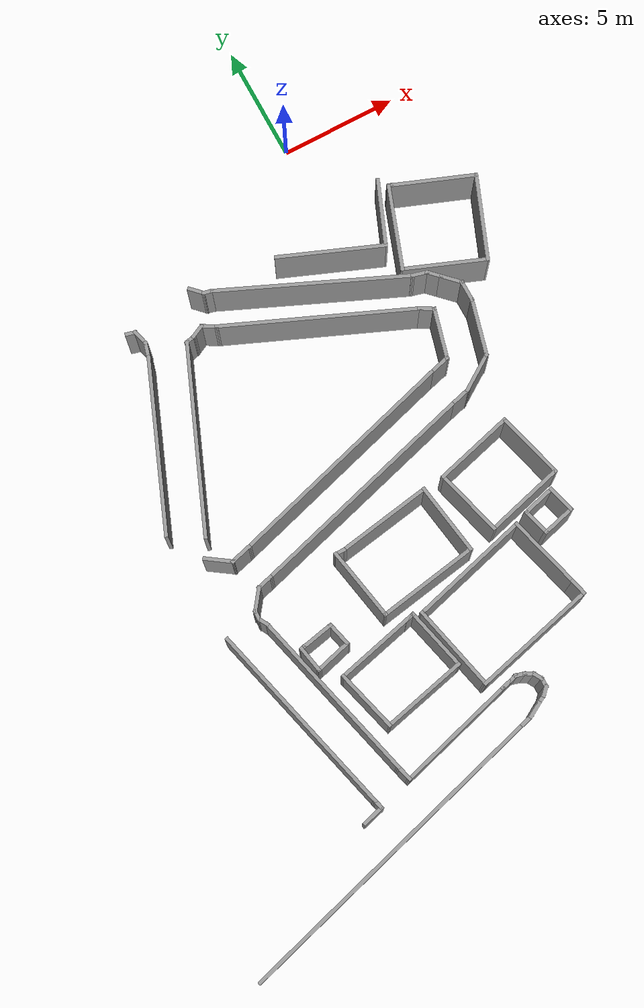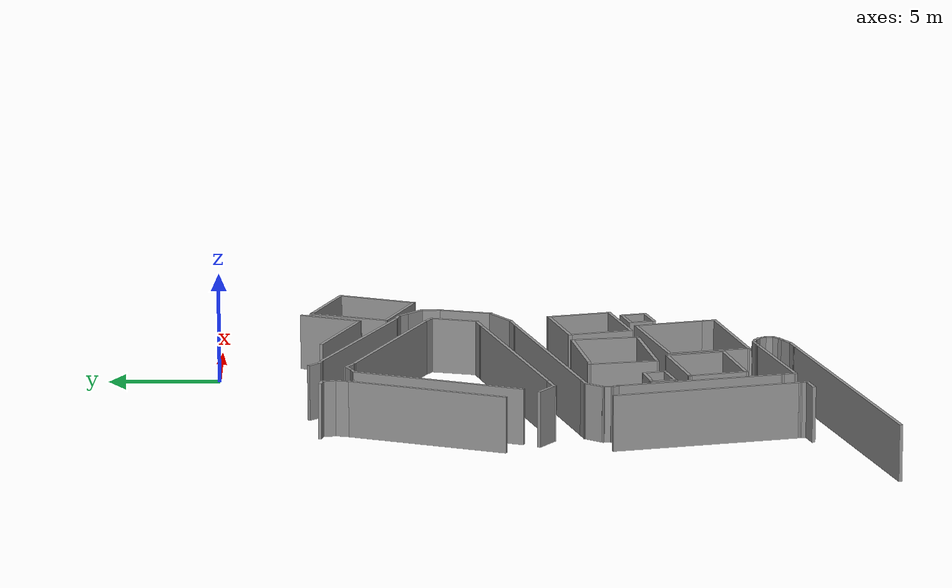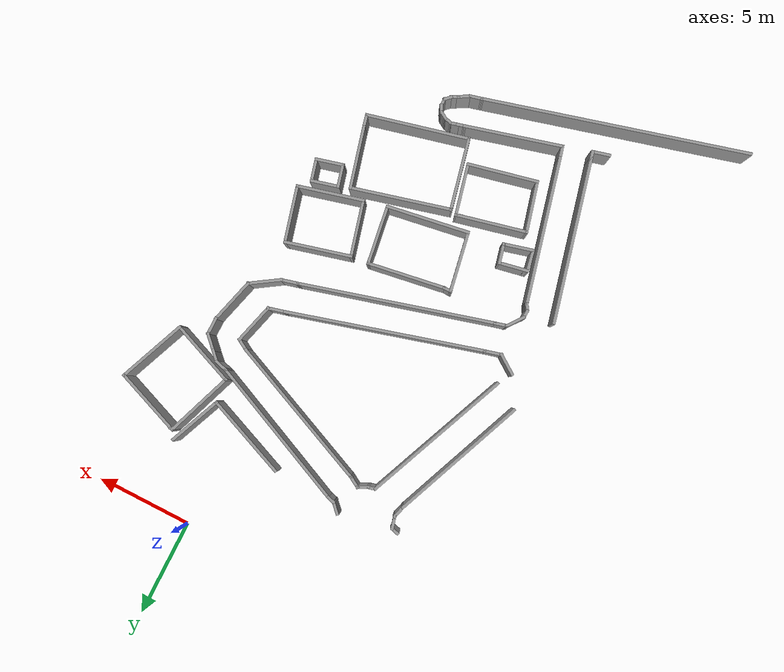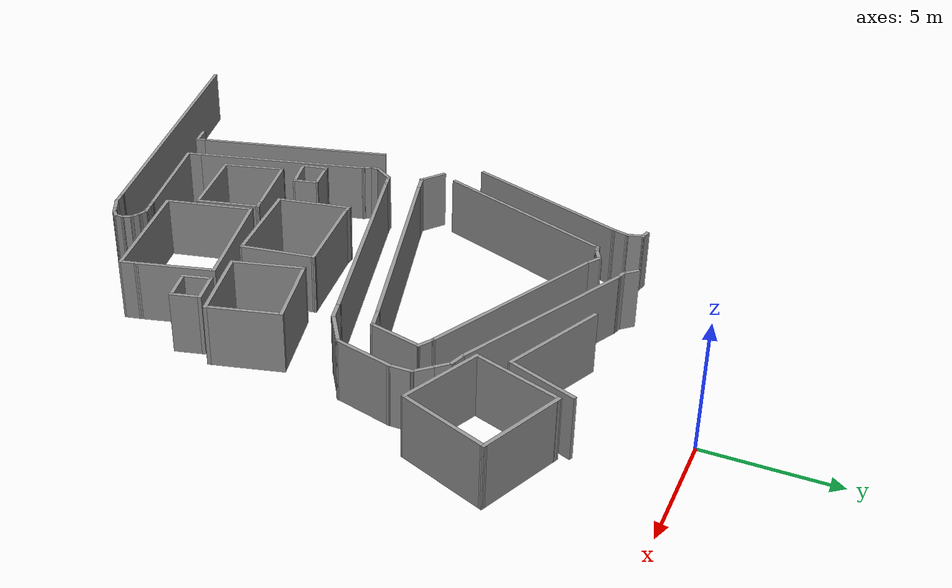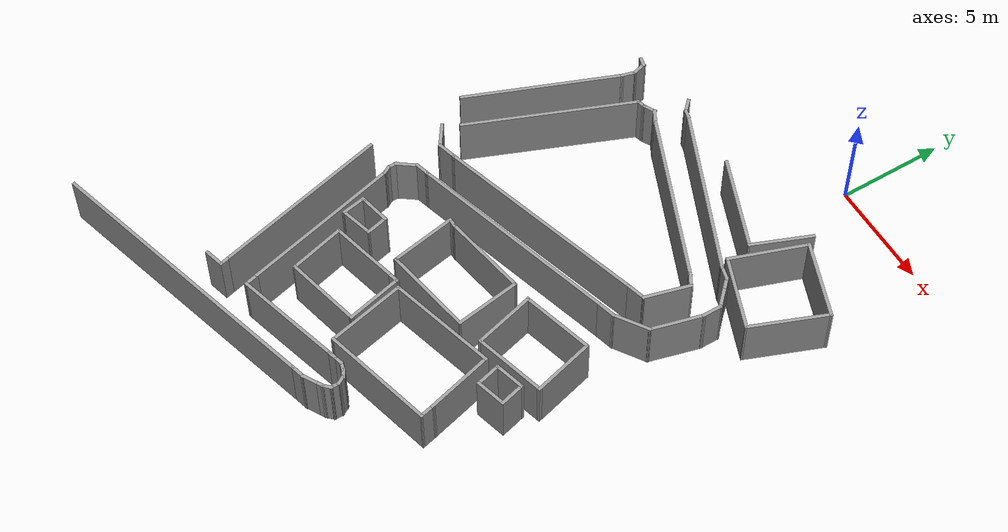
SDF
<sdf version="1.6">
 <model name="palazzo">
  <pose>-1.20783 -1.18535 0 0 -0 0</pose>
  <link name="Wall_1089">
   <collision name="Wall_1089_Collision">
    <geometry><box><size>0.5 0.15 2.5</size></box></geometry>
    <pose>0 0 1.25 0 -0 0</pose>
   </collision>
   <visual name="Wall_1089_Visual">
    <pose>0 0 1.25 0 -0 0</pose>
    <geometry><box><size>0.5 0.15 2.5</size></box></geometry>
    <material>
     <script><uri>file://media/materials/scripts/gazebo.material</uri><name>Gazebo/Grey</name></script>
     <ambient>1 1 1 1</ambient>
    </material>
    <meta><layer>0</layer></meta>
   </visual>
   <pose>-5.1104 -15.2881 0 0 -0 0</pose>
  </link>
  <link name="Wall_1091">
   <collision name="Wall_1091_Collision">
    <geometry><box><size>4.1105 0.15 2.5</size></box></geometry>
    <pose>0 0 1.25 0 -0 0</pose>
   </collision>
   <visual name="Wall_1091_Visual">
    <pose>0 0 1.25 0 -0 0</pose>
    <geometry><box><size>4.1105 0.15 2.5</size></box></geometry>
    <material>
     <script><uri>file://media/materials/scripts/gazebo.material</uri><name>Gazebo/Grey</name></script>
     <ambient>1 1 1 1</ambient>
    </material>
    <meta><layer>0</layer></meta>
   </visual>
   <pose>-2.98148 -14.9663 0 0 -0 -2.97833</pose>
  </link>
  <link name="Wall_1094">
   <collision name="Wall_1094_Collision">
    <geometry><box><size>3.19531 0.15 2.5</size></box></geometry>
    <pose>0 0 1.25 0 -0 0</pose>
   </collision>
   <visual name="Wall_1094_Visual">
    <pose>0 0 1.25 0 -0 0</pose>
    <geometry><box><size>3.19531 0.15 2.5</size></box></geometry>
    <material>
     <script><uri>file://media/materials/scripts/gazebo.material</uri><name>Gazebo/Grey</name></script>
     <ambient>1 1 1 1</ambient>
    </material>
    <meta><layer>0</layer></meta>
   </visual>
   <pose>-5.0062 -16.785 0 0 -0 1.75521</pose>
  </link>
  <link name="Wall_1096">
   <collision name="Wall_1096_Collision">
    <geometry><box><size>3.13127 0.15 2.5</size></box></geometry>
    <pose>0 0 1.25 0 -0 0</pose>
   </collision>
   <visual name="Wall_1096_Visual">
    <pose>0 0 1.25 0 -0 0</pose>
    <geometry><box><size>3.13127 0.15 2.5</size></box></geometry>
    <material>
     <script><uri>file://media/materials/scripts/gazebo.material</uri><name>Gazebo/Grey</name></script>
     <ambient>1 1 1 1</ambient>
    </material>
    <meta><layer>0</layer></meta>
   </visual>
   <pose>-0.802644 -16.118 0 0 -0 1.72226</pose>
  </link>
  <link name="Wall_1100">
   <collision name="Wall_1100_Collision">
    <geometry><box><size>4.35628 0.15 2.5</size></box></geometry>
    <pose>0 0 1.25 0 -0 0</pose>
   </collision>
   <visual name="Wall_1100_Visual">
    <pose>0 0 1.25 0 -0 0</pose>
    <geometry><box><size>4.35628 0.15 2.5</size></box></geometry>
    <material>
     <script><uri>file://media/materials/scripts/gazebo.material</uri><name>Gazebo/Grey</name></script>
     <ambient>1 1 1 1</ambient>
    </material>
    <meta><layer>0</layer></meta>
   </visual>
   <pose>-2.65236 -17.9367 0 0 -0 0.164846</pose>
  </link>
  <link name="Wall_1102">
   <collision name="Wall_1102_Collision">
    <geometry><box><size>0.25 0.15 2.5</size></box></geometry>
    <pose>0 0 1.25 0 -0 0</pose>
   </collision>
   <visual name="Wall_1102_Visual">
    <pose>0 0 1.25 0 -0 0</pose>
    <geometry><box><size>0.25 0.15 2.5</size></box></geometry>
    <material>
     <script><uri>file://media/materials/scripts/gazebo.material</uri><name>Gazebo/Grey</name></script>
     <ambient>1 1 1 1</ambient>
    </material>
    <meta><layer>0</layer></meta>
   </visual>
   <pose>-8.15322 -17.9121 0 0 -0 0.261799</pose>
  </link>
  <link name="Wall_1104">
   <collision name="Wall_1104_Collision">
    <geometry><box><size>1.5904 0.15 2.5</size></box></geometry>
    <pose>0 0 1.25 0 -0 0</pose>
   </collision>
   <visual name="Wall_1104_Visual">
    <pose>0 0 1.25 0 -0 0</pose>
    <geometry><box><size>1.5904 0.15 2.5</size></box></geometry>
    <material>
     <script><uri>file://media/materials/scripts/gazebo.material</uri><name>Gazebo/Grey</name></script>
     <ambient>1 1 1 1</ambient>
    </material>
    <meta><layer>0</layer></meta>
   </visual>
   <pose>-7.49575 -17.7816 0 0 -0 -2.94103</pose>
  </link>
  <link name="Wall_1106">
   <collision name="Wall_1106_Collision">
    <geometry><box><size>1.20102 0.15 2.5</size></box></geometry>
    <pose>0 0 1.25 0 -0 0</pose>
   </collision>
   <visual name="Wall_1106_Visual">
    <pose>0 0 1.25 0 -0 0</pose>
    <geometry><box><size>1.20102 0.15 2.5</size></box></geometry>
    <material>
     <script><uri>file://media/materials/scripts/gazebo.material</uri><name>Gazebo/Grey</name></script>
     <ambient>1 1 1 1</ambient>
    </material>
    <meta><layer>0</layer></meta>
   </visual>
   <pose>-8.10069 -18.4408 0 0 -0 1.76385</pose>
  </link>
  <link name="Wall_1108">
   <collision name="Wall_1108_Collision">
    <geometry><box><size>1.10932 0.15 2.5</size></box></geometry>
    <pose>0 0 1.25 0 -0 0</pose>
   </collision>
   <visual name="Wall_1108_Visual">
    <pose>0 0 1.25 0 -0 0</pose>
    <geometry><box><size>1.10932 0.15 2.5</size></box></geometry>
    <material>
     <script><uri>file://media/materials/scripts/gazebo.material</uri><name>Gazebo/Grey</name></script>
     <ambient>1 1 1 1</ambient>
    </material>
    <meta><layer>0</layer></meta>
   </visual>
   <pose>-6.67366 -18.1034 0 0 -0 1.81577</pose>
  </link>
  <link name="Wall_1110">
   <collision name="Wall_1110_Collision">
    <geometry><box><size>1.64376 0.15 2.5</size></box></geometry>
    <pose>0 0 1.25 0 -0 0</pose>
   </collision>
   <visual name="Wall_1110_Visual">
    <pose>0 0 1.25 0 -0 0</pose>
    <geometry><box><size>1.64376 0.15 2.5</size></box></geometry>
    <material>
     <script><uri>file://media/materials/scripts/gazebo.material</uri><name>Gazebo/Grey</name></script>
     <ambient>1 1 1 1</ambient>
    </material>
    <meta><layer>0</layer></meta>
   </visual>
   <pose>-7.2786 -18.7626 0 0 -0 0.262609</pose>
  </link>
  <link name="Wall_1112">
   <collision name="Wall_1112_Collision">
    <geometry><box><size>3.5 0.15 2.5</size></box></geometry>
    <pose>0 0 1.25 0 -0 0</pose>
   </collision>
   <visual name="Wall_1112_Visual">
    <pose>0 0 1.25 0 -0 0</pose>
    <geometry><box><size>3.5 0.15 2.5</size></box></geometry>
    <material>
     <script><uri>file://media/materials/scripts/gazebo.material</uri><name>Gazebo/Grey</name></script>
     <ambient>1 1 1 1</ambient>
    </material>
    <meta><layer>0</layer></meta>
   </visual>
   <pose>1.50593 -14.1293 0 0 -0 0.261799</pose>
  </link>
  <link name="Wall_1113">
   <collision name="Wall_1113_Collision">
    <geometry><box><size>3 0.15 2.5</size></box></geometry>
    <pose>0 0 1.25 0 -0 0</pose>
   </collision>
   <visual name="Wall_1113_Visual">
    <pose>0 0 1.25 0 -0 0</pose>
    <geometry><box><size>3 0.15 2.5</size></box></geometry>
    <material>
     <script><uri>file://media/materials/scripts/gazebo.material</uri><name>Gazebo/Grey</name></script>
     <ambient>1 1 1 1</ambient>
    </material>
    <meta><layer>0</layer></meta>
   </visual>
   <pose>3.49268 -15.0722 0 0 -0 -1.309</pose>
  </link>
  <link name="Wall_1114">
   <collision name="Wall_1114_Collision">
    <geometry><box><size>3.5 0.15 2.5</size></box></geometry>
    <pose>0 0 1.25 0 -0 0</pose>
   </collision>
   <visual name="Wall_1114_Visual">
    <pose>0 0 1.25 0 -0 0</pose>
    <geometry><box><size>3.5 0.15 2.5</size></box></geometry>
    <material>
     <script><uri>file://media/materials/scripts/gazebo.material</uri><name>Gazebo/Grey</name></script>
     <ambient>1 1 1 1</ambient>
    </material>
    <meta><layer>0</layer></meta>
   </visual>
   <pose>2.24357 -16.8821 0 0 -0 -2.87979</pose>
  </link>
  <link name="Wall_1115">
   <collision name="Wall_1115_Collision">
    <geometry><box><size>3 0.15 2.5</size></box></geometry>
    <pose>0 0 1.25 0 -0 0</pose>
   </collision>
   <visual name="Wall_1115_Visual">
    <pose>0 0 1.25 0 -0 0</pose>
    <geometry><box><size>3 0.15 2.5</size></box></geometry>
    <material>
     <script><uri>file://media/materials/scripts/gazebo.material</uri><name>Gazebo/Grey</name></script>
     <ambient>1 1 1 1</ambient>
    </material>
    <meta><layer>0</layer></meta>
   </visual>
   <pose>0.256826 -15.9392 0 0 -0 1.8326</pose>
  </link>
  <link name="Wall_1117">
   <collision name="Wall_1117_Collision">
    <geometry><box><size>1.5 0.15 2.5</size></box></geometry>
    <pose>0 0 1.25 0 -0 0</pose>
   </collision>
   <visual name="Wall_1117_Visual">
    <pose>0 0 1.25 0 -0 0</pose>
    <geometry><box><size>1.5 0.15 2.5</size></box></geometry>
    <material>
     <script><uri>file://media/materials/scripts/gazebo.material</uri><name>Gazebo/Grey</name></script>
     <ambient>1 1 1 1</ambient>
    </material>
    <meta><layer>0</layer></meta>
   </visual>
   <pose>2.70937 -17.1791 0 0 -0 0.261799</pose>
  </link>
  <link name="Wall_1118">
   <collision name="Wall_1118_Collision">
    <geometry><box><size>1.25 0.15 2.5</size></box></geometry>
    <pose>0 0 1.25 0 -0 0</pose>
   </collision>
   <visual name="Wall_1118_Visual">
    <pose>0 0 1.25 0 -0 0</pose>
    <geometry><box><size>1.25 0.15 2.5</size></box></geometry>
    <material>
     <script><uri>file://media/materials/scripts/gazebo.material</uri><name>Gazebo/Grey</name></script>
     <ambient>1 1 1 1</ambient>
    </material>
    <meta><layer>0</layer></meta>
   </visual>
   <pose>3.50372 -17.5357 0 0 -0 -1.309</pose>
  </link>
  <link name="Wall_1119">
   <collision name="Wall_1119_Collision">
    <geometry><box><size>1.5 0.15 2.5</size></box></geometry>
    <pose>0 0 1.25 0 -0 0</pose>
   </collision>
   <visual name="Wall_1119_Visual">
    <pose>0 0 1.25 0 -0 0</pose>
    <geometry><box><size>1.5 0.15 2.5</size></box></geometry>
    <material>
     <script><uri>file://media/materials/scripts/gazebo.material</uri><name>Gazebo/Grey</name></script>
     <ambient>1 1 1 1</ambient>
    </material>
    <meta><layer>0</layer></meta>
   </visual>
   <pose>2.99407 -18.2417 0 0 -0 -2.87979</pose>
  </link>
  <link name="Wall_1120">
   <collision name="Wall_1120_Collision">
    <geometry><box><size>1.25 0.15 2.5</size></box></geometry>
    <pose>0 0 1.25 0 -0 0</pose>
   </collision>
   <visual name="Wall_1120_Visual">
    <pose>0 0 1.25 0 -0 0</pose>
    <geometry><box><size>1.25 0.15 2.5</size></box></geometry>
    <material>
     <script><uri>file://media/materials/scripts/gazebo.material</uri><name>Gazebo/Grey</name></script>
     <ambient>1 1 1 1</ambient>
    </material>
    <meta><layer>0</layer></meta>
   </visual>
   <pose>2.19972 -17.8851 0 0 -0 1.8326</pose>
  </link>
  <link name="Wall_1122">
   <collision name="Wall_1122_Collision">
    <geometry><box><size>5.25 0.15 2.5</size></box></geometry>
    <pose>0 0 1.25 0 -0 0</pose>
   </collision>
   <visual name="Wall_1122_Visual">
    <pose>0 0 1.25 0 -0 0</pose>
    <geometry><box><size>5.25 0.15 2.5</size></box></geometry>
    <material>
     <script><uri>file://media/materials/scripts/gazebo.material</uri><name>Gazebo/Grey</name></script>
     <ambient>1 1 1 1</ambient>
    </material>
    <meta><layer>0</layer></meta>
   </visual>
   <pose>-0.978825 -18.2387 0 0 -0 0.261799</pose>
  </link>
  <link name="Wall_1123">
   <collision name="Wall_1123_Collision">
    <geometry><box><size>3.25 0.15 2.5</size></box></geometry>
    <pose>0 0 1.25 0 -0 0</pose>
   </collision>
   <visual name="Wall_1123_Visual">
    <pose>0 0 1.25 0 -0 0</pose>
    <geometry><box><size>3.25 0.15 2.5</size></box></geometry>
    <material>
     <script><uri>file://media/materials/scripts/gazebo.material</uri><name>Gazebo/Grey</name></script>
     <ambient>1 1 1 1</ambient>
    </material>
    <meta><layer>0</layer></meta>
   </visual>
   <pose>1.88546 -19.0759 0 0 -0 -1.309</pose>
  </link>
  <link name="Wall_1125">
   <collision name="Wall_1125_Collision">
    <geometry><box><size>3.79575 0.15 2.5</size></box></geometry>
    <pose>0 0 1.25 0 -0 0</pose>
   </collision>
   <visual name="Wall_1125_Visual">
    <pose>0 0 1.25 0 -0 0</pose>
    <geometry><box><size>3.79575 0.15 2.5</size></box></geometry>
    <material>
     <script><uri>file://media/materials/scripts/gazebo.material</uri><name>Gazebo/Grey</name></script>
     <ambient>1 1 1 1</ambient>
    </material>
    <meta><layer>0</layer></meta>
   </visual>
   <pose>-3.03121 -20.6747 0 0 -0 1.79806</pose>
  </link>
  <link name="Wall_1127">
   <collision name="Wall_1127_Collision">
    <geometry><box><size>5.36504 0.15 2.5</size></box></geometry>
    <pose>0 0 1.25 0 -0 0</pose>
   </collision>
   <visual name="Wall_1127_Visual">
    <pose>0 0 1.25 0 -0 0</pose>
    <geometry><box><size>5.36504 0.15 2.5</size></box></geometry>
    <material>
     <script><uri>file://media/materials/scripts/gazebo.material</uri><name>Gazebo/Grey</name></script>
     <ambient>1 1 1 1</ambient>
    </material>
    <meta><layer>0</layer></meta>
   </visual>
   <pose>-0.091497 -21.8156 0 0 -0 -2.89555</pose>
  </link>
  <link name="Wall_1129">
   <collision name="Wall_1129_Collision">
    <geometry><box><size>0.77586 0.15 2.5</size></box></geometry>
    <pose>0 0 1.25 0 -0 0</pose>
   </collision>
   <visual name="Wall_1129_Visual">
    <pose>0 0 1.25 0 -0 0</pose>
    <geometry><box><size>0.77586 0.15 2.5</size></box></geometry>
    <material>
     <script><uri>file://media/materials/scripts/gazebo.material</uri><name>Gazebo/Grey</name></script>
     <ambient>1 1 1 1</ambient>
    </material>
    <meta><layer>0</layer></meta>
   </visual>
   <pose>2.36206 -20.8768 0 0 -0 1.81425</pose>
  </link>
  <link name="Wall_1131">
   <collision name="Wall_1131_Collision">
    <geometry><box><size>0.5 0.15 2.5</size></box></geometry>
    <pose>0 0 1.25 0 -0 0</pose>
   </collision>
   <visual name="Wall_1131_Visual">
    <pose>0 0 1.25 0 -0 0</pose>
    <geometry><box><size>0.5 0.15 2.5</size></box></geometry>
    <material>
     <script><uri>file://media/materials/scripts/gazebo.material</uri><name>Gazebo/Grey</name></script>
     <ambient>1 1 1 1</ambient>
    </material>
    <meta><layer>0</layer></meta>
   </visual>
   <pose>-3.95324 -18.8223 0 0 -0 -2.87979</pose>
  </link>
  <link name="Wall_1133">
   <collision name="Wall_1133_Collision">
    <geometry><box><size>3.75657 0.15 2.5</size></box></geometry>
    <pose>0 0 1.25 0 -0 0</pose>
   </collision>
   <visual name="Wall_1133_Visual">
    <pose>0 0 1.25 0 -0 0</pose>
    <geometry><box><size>3.75657 0.15 2.5</size></box></geometry>
    <material>
     <script><uri>file://media/materials/scripts/gazebo.material</uri><name>Gazebo/Grey</name></script>
     <ambient>1 1 1 1</ambient>
    </material>
    <meta><layer>0</layer></meta>
   </visual>
   <pose>-5.53739 -19.1991 0 0 -0 0.236283</pose>
  </link>
  <link name="Wall_1135">
   <collision name="Wall_1135_Collision">
    <geometry><box><size>2.7183 0.15 2.5</size></box></geometry>
    <pose>0 0 1.25 0 -0 0</pose>
   </collision>
   <visual name="Wall_1135_Visual">
    <pose>0 0 1.25 0 -0 0</pose>
    <geometry><box><size>2.7183 0.15 2.5</size></box></geometry>
    <material>
     <script><uri>file://media/materials/scripts/gazebo.material</uri><name>Gazebo/Grey</name></script>
     <ambient>1 1 1 1</ambient>
    </material>
    <meta><layer>0</layer></meta>
   </visual>
   <pose>-6.9559 -20.861 0 0 -0 1.83445</pose>
  </link>
  <link name="Wall_1137">
   <collision name="Wall_1137_Collision">
    <geometry><box><size>2.74926 0.15 2.5</size></box></geometry>
    <pose>0 0 1.25 0 -0 0</pose>
   </collision>
   <visual name="Wall_1137_Visual">
    <pose>0 0 1.25 0 -0 0</pose>
    <geometry><box><size>2.74926 0.15 2.5</size></box></geometry>
    <material>
     <script><uri>file://media/materials/scripts/gazebo.material</uri><name>Gazebo/Grey</name></script>
     <ambient>1 1 1 1</ambient>
    </material>
    <meta><layer>0</layer></meta>
   </visual>
   <pose>-3.47616 -20.0396 0 0 -0 1.8101</pose>
  </link>
  <link name="Wall_1139">
   <collision name="Wall_1139_Collision">
    <geometry><box><size>3.69427 0.15 2.5</size></box></geometry>
    <pose>0 0 1.25 0 -0 0</pose>
   </collision>
   <visual name="Wall_1139_Visual">
    <pose>0 0 1.25 0 -0 0</pose>
    <geometry><box><size>3.69427 0.15 2.5</size></box></geometry>
    <material>
     <script><uri>file://media/materials/scripts/gazebo.material</uri><name>Gazebo/Grey</name></script>
     <ambient>1 1 1 1</ambient>
    </material>
    <meta><layer>0</layer></meta>
   </visual>
   <pose>-4.89468 -21.7015 0 0 -0 0.227281</pose>
  </link>
  <link name="Wall_221">
   <collision name="Wall_221_Collision">
    <geometry><box><size>0.75 0.15 2.5</size></box></geometry>
    <pose>0 0 1.25 0 -0 0</pose>
   </collision>
   <visual name="Wall_221_Visual">
    <pose>0 0 1.25 0 -0 0</pose>
    <geometry><box><size>0.75 0.15 2.5</size></box></geometry>
    <material>
     <script><uri>file://media/materials/scripts/gazebo.material</uri><name>Gazebo/Grey</name></script>
     <ambient>1 1 1 1</ambient>
    </material>
    <meta><layer>0</layer></meta>
   </visual>
   <pose>-5.12963 -3.20137 0 0 -0 -0.785398</pose>
  </link>
  <link name="Wall_222">
   <collision name="Wall_222_Collision">
    <geometry><box><size>0.5 0.15 2.5</size></box></geometry>
    <pose>0 0 1.25 0 -0 0</pose>
   </collision>
   <visual name="Wall_222_Visual">
    <pose>0 0 1.25 0 -0 0</pose>
    <geometry><box><size>0.5 0.15 2.5</size></box></geometry>
    <material>
     <script><uri>file://media/materials/scripts/gazebo.material</uri><name>Gazebo/Grey</name></script>
     <ambient>1 1 1 1</ambient>
    </material>
    <meta><layer>0</layer></meta>
   </visual>
   <pose>-4.74846 -3.4588 0 0 -0 -0.261799</pose>
  </link>
  <link name="Wall_224">
   <collision name="Wall_224_Collision">
    <geometry><box><size>0.75 0.15 2.5</size></box></geometry>
    <pose>0 0 1.25 0 -0 0</pose>
   </collision>
   <visual name="Wall_224_Visual">
    <pose>0 0 1.25 0 -0 0</pose>
    <geometry><box><size>0.75 0.15 2.5</size></box></geometry>
    <material>
     <script><uri>file://media/materials/scripts/gazebo.material</uri><name>Gazebo/Grey</name></script>
     <ambient>1 1 1 1</ambient>
    </material>
    <meta><layer>0</layer></meta>
   </visual>
   <pose>3.08985 -6.81653 0 0 -0 -0.261799</pose>
  </link>
  <link name="Wall_226">
   <collision name="Wall_226_Collision">
    <geometry><box><size>8.20734 0.15 2.5</size></box></geometry>
    <pose>0 0 1.25 0 -0 0</pose>
   </collision>
   <visual name="Wall_226_Visual">
    <pose>0 0 1.25 0 -0 0</pose>
    <geometry><box><size>8.20734 0.15 2.5</size></box></geometry>
    <material>
     <script><uri>file://media/materials/scripts/gazebo.material</uri><name>Gazebo/Grey</name></script>
     <ambient>1 1 1 1</ambient>
    </material>
    <meta><layer>0</layer></meta>
   </visual>
   <pose>-0.889677 -5.12149 0 0 -0 -0.413122</pose>
  </link>
  <link name="Wall_228">
   <collision name="Wall_228_Collision">
    <geometry><box><size>0.75 0.15 2.5</size></box></geometry>
    <pose>0 0 1.25 0 -0 0</pose>
   </collision>
   <visual name="Wall_228_Visual">
    <pose>0 0 1.25 0 -0 0</pose>
    <geometry><box><size>0.75 0.15 2.5</size></box></geometry>
    <material>
     <script><uri>file://media/materials/scripts/gazebo.material</uri><name>Gazebo/Grey</name></script>
     <ambient>1 1 1 1</ambient>
    </material>
    <meta><layer>0</layer></meta>
   </visual>
   <pose>3.59176 -7.1063 0 0 -0 -0.785398</pose>
  </link>
  <link name="Wall_229">
   <collision name="Wall_229_Collision">
    <geometry><box><size>1 0.15 2.5</size></box></geometry>
    <pose>0 0 1.25 0 -0 0</pose>
   </collision>
   <visual name="Wall_229_Visual">
    <pose>0 0 1.25 0 -0 0</pose>
    <geometry><box><size>1 0.15 2.5</size></box></geometry>
    <material>
     <script><uri>file://media/materials/scripts/gazebo.material</uri><name>Gazebo/Grey</name></script>
     <ambient>1 1 1 1</ambient>
    </material>
    <meta><layer>0</layer></meta>
   </visual>
   <pose>4.10441 -7.61896 0 0 -0 -0.785398</pose>
  </link>
  <link name="Wall_230">
   <collision name="Wall_230_Collision">
    <geometry><box><size>1 0.15 2.5</size></box></geometry>
    <pose>0 0 1.25 0 -0 0</pose>
   </collision>
   <visual name="Wall_230_Visual">
    <pose>0 0 1.25 0 -0 0</pose>
    <geometry><box><size>1 0.15 2.5</size></box></geometry>
    <material>
     <script><uri>file://media/materials/scripts/gazebo.material</uri><name>Gazebo/Grey</name></script>
     <ambient>1 1 1 1</ambient>
    </material>
    <meta><layer>0</layer></meta>
   </visual>
   <pose>4.40493 -8.34448 0 0 -0 -1.5708</pose>
  </link>
  <link name="Wall_231">
   <collision name="Wall_231_Collision">
    <geometry><box><size>2.5 0.15 2.5</size></box></geometry>
    <pose>0 0 1.25 0 -0 0</pose>
   </collision>
   <visual name="Wall_231_Visual">
    <pose>0 0 1.25 0 -0 0</pose>
    <geometry><box><size>2.5 0.15 2.5</size></box></geometry>
    <material>
     <script><uri>file://media/materials/scripts/gazebo.material</uri><name>Gazebo/Grey</name></script>
     <ambient>1 1 1 1</ambient>
    </material>
    <meta><layer>0</layer></meta>
   </visual>
   <pose>4.10082 -9.90444 0 0 -0 -1.8326</pose>
  </link>
  <link name="Wall_233">
   <collision name="Wall_233_Collision">
    <geometry><box><size>0.75 0.15 2.5</size></box></geometry>
    <pose>0 0 1.25 0 -0 0</pose>
   </collision>
   <visual name="Wall_233_Visual">
    <pose>0 0 1.25 0 -0 0</pose>
    <geometry><box><size>0.75 0.15 2.5</size></box></geometry>
    <material>
     <script><uri>file://media/materials/scripts/gazebo.material</uri><name>Gazebo/Grey</name></script>
     <ambient>1 1 1 1</ambient>
    </material>
    <meta><layer>0</layer></meta>
   </visual>
   <pose>-8.24523 -14.9604 0 0 -0 0.261799</pose>
  </link>
  <link name="Wall_235">
   <collision name="Wall_235_Collision">
    <geometry><box><size>1 0.15 2.5</size></box></geometry>
    <pose>0 0 1.25 0 -0 0</pose>
   </collision>
   <visual name="Wall_235_Visual">
    <pose>0 0 1.25 0 -0 0</pose>
    <geometry><box><size>1 0.15 2.5</size></box></geometry>
    <material>
     <script><uri>file://media/materials/scripts/gazebo.material</uri><name>Gazebo/Grey</name></script>
     <ambient>1 1 1 1</ambient>
    </material>
    <meta><layer>0</layer></meta>
   </visual>
   <pose>2.01407 -12.0562 0 0 -0 0.261799</pose>
  </link>
  <link name="Wall_237">
   <collision name="Wall_237_Collision">
    <geometry><box><size>1.79471 0.15 2.5</size></box></geometry>
    <pose>0 0 1.25 0 -0 0</pose>
   </collision>
   <visual name="Wall_237_Visual">
    <pose>0 0 1.25 0 -0 0</pose>
    <geometry><box><size>1.79471 0.15 2.5</size></box></geometry>
    <material>
     <script><uri>file://media/materials/scripts/gazebo.material</uri><name>Gazebo/Grey</name></script>
     <ambient>1 1 1 1</ambient>
    </material>
    <meta><layer>0</layer></meta>
   </visual>
   <pose>3.11065 -11.4928 0 0 -0 0.584005</pose>
  </link>
  <link name="Wall_239">
   <collision name="Wall_239_Collision">
    <geometry><box><size>10.0875 0.15 2.5</size></box></geometry>
    <pose>0 0 1.25 0 -0 0</pose>
   </collision>
   <visual name="Wall_239_Visual">
    <pose>0 0 1.25 0 -0 0</pose>
    <geometry><box><size>10.0875 0.15 2.5</size></box></geometry>
    <material>
     <script><uri>file://media/materials/scripts/gazebo.material</uri><name>Gazebo/Grey</name></script>
     <ambient>1 1 1 1</ambient>
    </material>
    <meta><layer>0</layer></meta>
   </visual>
   <pose>-3.17595 -13.5245 0 0 -0 0.276881</pose>
  </link>
  <link name="Wall_241">
   <collision name="Wall_241_Collision">
    <geometry><box><size>0.75 0.15 2.5</size></box></geometry>
    <pose>0 0 1.25 0 -0 0</pose>
   </collision>
   <visual name="Wall_241_Visual">
    <pose>0 0 1.25 0 -0 0</pose>
    <geometry><box><size>0.75 0.15 2.5</size></box></geometry>
    <material>
     <script><uri>file://media/materials/scripts/gazebo.material</uri><name>Gazebo/Grey</name></script>
     <ambient>1 1 1 1</ambient>
    </material>
    <meta><layer>0</layer></meta>
   </visual>
   <pose>-5.36974 -4.75157 0 0 -0 -0.523599</pose>
  </link>
  <link name="Wall_243">
   <collision name="Wall_243_Collision">
    <geometry><box><size>0.75 0.15 2.5</size></box></geometry>
    <pose>0 0 1.25 0 -0 0</pose>
   </collision>
   <visual name="Wall_243_Visual">
    <pose>0 0 1.25 0 -0 0</pose>
    <geometry><box><size>0.75 0.15 2.5</size></box></geometry>
    <material>
     <script><uri>file://media/materials/scripts/gazebo.material</uri><name>Gazebo/Grey</name></script>
     <ambient>1 1 1 1</ambient>
    </material>
    <meta><layer>0</layer></meta>
   </visual>
   <pose>2.6346 -8.22689 0 0 -0 2.61799</pose>
  </link>
  <link name="Wall_245">
   <collision name="Wall_245_Collision">
    <geometry><box><size>8.28043 0.15 2.5</size></box></geometry>
    <pose>0 0 1.25 0 -0 0</pose>
   </collision>
   <visual name="Wall_245_Visual">
    <pose>0 0 1.25 0 -0 0</pose>
    <geometry><box><size>8.28043 0.15 2.5</size></box></geometry>
    <material>
     <script><uri>file://media/materials/scripts/gazebo.material</uri><name>Gazebo/Grey</name></script>
     <ambient>1 1 1 1</ambient>
    </material>
    <meta><layer>0</layer></meta>
   </visual>
   <pose>-1.36757 -6.48923 0 0 -0 -0.401226</pose>
  </link>
  <link name="Wall_247">
   <collision name="Wall_247_Collision">
    <geometry><box><size>2.25 0.15 2.5</size></box></geometry>
    <pose>0 0 1.25 0 -0 0</pose>
   </collision>
   <visual name="Wall_247_Visual">
    <pose>0 0 1.25 0 -0 0</pose>
    <geometry><box><size>2.25 0.15 2.5</size></box></geometry>
    <material>
     <script><uri>file://media/materials/scripts/gazebo.material</uri><name>Gazebo/Grey</name></script>
     <ambient>1 1 1 1</ambient>
    </material>
    <meta><layer>0</layer></meta>
   </visual>
   <pose>2.62265 -9.39111 0 0 -0 -1.8326</pose>
  </link>
  <link name="Wall_249">
   <collision name="Wall_249_Collision">
    <geometry><box><size>1 0.15 2.5</size></box></geometry>
    <pose>0 0 1.25 0 -0 0</pose>
   </collision>
   <visual name="Wall_249_Visual">
    <pose>0 0 1.25 0 -0 0</pose>
    <geometry><box><size>1 0.15 2.5</size></box></geometry>
    <material>
     <script><uri>file://media/materials/scripts/gazebo.material</uri><name>Gazebo/Grey</name></script>
     <ambient>1 1 1 1</ambient>
    </material>
    <meta><layer>0</layer></meta>
   </visual>
   <pose>-8.54033 -13.5365 0 0 -0 0.261799</pose>
  </link>
  <link name="Wall_251">
   <collision name="Wall_251_Collision">
    <geometry><box><size>1 0.15 2.5</size></box></geometry>
    <pose>0 0 1.25 0 -0 0</pose>
   </collision>
   <visual name="Wall_251_Visual">
    <pose>0 0 1.25 0 -0 0</pose>
    <geometry><box><size>1 0.15 2.5</size></box></geometry>
    <material>
     <script><uri>file://media/materials/scripts/gazebo.material</uri><name>Gazebo/Grey</name></script>
     <ambient>1 1 1 1</ambient>
    </material>
    <meta><layer>0</layer></meta>
   </visual>
   <pose>1.94037 -10.5153 0 0 -0 -2.87979</pose>
  </link>
  <link name="Wall_253">
   <collision name="Wall_253_Collision">
    <geometry><box><size>10.2076 0.15 2.5</size></box></geometry>
    <pose>0 0 1.25 0 -0 0</pose>
   </collision>
   <visual name="Wall_253_Visual">
    <pose>0 0 1.25 0 -0 0</pose>
    <geometry><box><size>10.2076 0.15 2.5</size></box></geometry>
    <material>
     <script><uri>file://media/materials/scripts/gazebo.material</uri><name>Gazebo/Grey</name></script>
     <ambient>1 1 1 1</ambient>
    </material>
    <meta><layer>0</layer></meta>
   </visual>
   <pose>-3.29998 -12.0259 0 0 -0 0.282242</pose>
  </link>
  <link name="Wall_269">
   <collision name="Wall_269_Collision">
    <geometry><box><size>0.5 0.15 2.5</size></box></geometry>
    <pose>0 0 1.25 0 -0 0</pose>
   </collision>
   <visual name="Wall_269_Visual">
    <pose>0 0 1.25 0 -0 0</pose>
    <geometry><box><size>0.5 0.15 2.5</size></box></geometry>
    <material>
     <script><uri>file://media/materials/scripts/gazebo.material</uri><name>Gazebo/Grey</name></script>
     <ambient>1 1 1 1</ambient>
    </material>
    <meta><layer>0</layer></meta>
   </visual>
   <pose>-8.24146 -3.53996 0 0 -0 2.87979</pose>
  </link>
  <link name="Wall_273">
   <collision name="Wall_273_Collision">
    <geometry><box><size>0.75 0.15 2.5</size></box></geometry>
    <pose>0 0 1.25 0 -0 0</pose>
   </collision>
   <visual name="Wall_273_Visual">
    <pose>0 0 1.25 0 -0 0</pose>
    <geometry><box><size>0.75 0.15 2.5</size></box></geometry>
    <material>
     <script><uri>file://media/materials/scripts/gazebo.material</uri><name>Gazebo/Grey</name></script>
     <ambient>1 1 1 1</ambient>
    </material>
    <meta><layer>0</layer></meta>
   </visual>
   <pose>-7.99477 -3.87503 0 0 -0 -1.309</pose>
  </link>
  <link name="Wall_274">
   <collision name="Wall_274_Collision">
    <geometry><box><size>0.75 0.15 2.5</size></box></geometry>
    <pose>0 0 1.25 0 -0 0</pose>
   </collision>
   <visual name="Wall_274_Visual">
    <pose>0 0 1.25 0 -0 0</pose>
    <geometry><box><size>0.75 0.15 2.5</size></box></geometry>
    <material>
     <script><uri>file://media/materials/scripts/gazebo.material</uri><name>Gazebo/Grey</name></script>
     <ambient>1 1 1 1</ambient>
    </material>
    <meta><layer>0</layer></meta>
   </visual>
   <pose>-7.99477 -4.45458 0 0 -0 -1.8326</pose>
  </link>
  <link name="Wall_278">
   <collision name="Wall_278_Collision">
    <geometry><box><size>7.41513 0.15 2.5</size></box></geometry>
    <pose>0 0 1.25 0 -0 0</pose>
   </collision>
   <visual name="Wall_278_Visual">
    <pose>0 0 1.25 0 -0 0</pose>
    <geometry><box><size>7.41513 0.15 2.5</size></box></geometry>
    <material>
     <script><uri>file://media/materials/scripts/gazebo.material</uri><name>Gazebo/Grey</name></script>
     <ambient>1 1 1 1</ambient>
    </material>
    <meta><layer>0</layer></meta>
   </visual>
   <pose>-9.41501 -8.11971 0 0 -0 -1.94937</pose>
  </link>
  <link name="Wall_280">
   <collision name="Wall_280_Collision">
    <geometry><box><size>0.5 0.15 2.5</size></box></geometry>
    <pose>0 0 1.25 0 -0 0</pose>
   </collision>
   <visual name="Wall_280_Visual">
    <pose>0 0 1.25 0 -0 0</pose>
    <geometry><box><size>0.5 0.15 2.5</size></box></geometry>
    <material>
     <script><uri>file://media/materials/scripts/gazebo.material</uri><name>Gazebo/Grey</name></script>
     <ambient>1 1 1 1</ambient>
    </material>
    <meta><layer>0</layer></meta>
   </visual>
   <pose>-6.27888 -4.88672 0 0 -0 0.261799</pose>
  </link>
  <link name="Wall_281">
   <collision name="Wall_281_Collision">
    <geometry><box><size>0.686854 0.15 2.5</size></box></geometry>
    <pose>0 0 1.25 0 -0 0</pose>
   </collision>
   <visual name="Wall_281_Visual">
    <pose>0 0 1.25 0 -0 0</pose>
    <geometry><box><size>0.686854 0.15 2.5</size></box></geometry>
    <material>
     <script><uri>file://media/materials/scripts/gazebo.material</uri><name>Gazebo/Grey</name></script>
     <ambient>1 1 1 1</ambient>
    </material>
    <meta><layer>0</layer></meta>
   </visual>
   <pose>-5.8697 -4.7215 0 0 -0 0.463156</pose>
  </link>
  <link name="Wall_285">
   <collision name="Wall_285_Collision">
    <geometry><box><size>8.08501 0.15 2.5</size></box></geometry>
    <pose>0 0 1.25 0 -0 0</pose>
   </collision>
   <visual name="Wall_285_Visual">
    <pose>0 0 1.25 0 -0 0</pose>
    <geometry><box><size>8.08501 0.15 2.5</size></box></geometry>
    <material>
     <script><uri>file://media/materials/scripts/gazebo.material</uri><name>Gazebo/Grey</name></script>
     <ambient>1 1 1 1</ambient>
    </material>
    <meta><layer>0</layer></meta>
   </visual>
   <pose>-7.94284 -8.6071 0 0 -0 -1.95713</pose>
  </link>
  <link name="Wall_287">
   <collision name="Wall_287_Collision">
    <geometry><box><size>1.25733 0.15 2.5</size></box></geometry>
    <pose>0 0 1.25 0 -0 0</pose>
   </collision>
   <visual name="Wall_287_Visual">
    <pose>0 0 1.25 0 -0 0</pose>
    <geometry><box><size>1.25733 0.15 2.5</size></box></geometry>
    <material>
     <script><uri>file://media/materials/scripts/gazebo.material</uri><name>Gazebo/Grey</name></script>
     <ambient>1 1 1 1</ambient>
    </material>
    <meta><layer>0</layer></meta>
   </visual>
   <pose>-9.40681 -13.3324 0 0 -0 -0.603188</pose>
  </link>
  <link name="Wall_340">
   <collision name="Wall_340_Collision">
    <geometry><box><size>1.0971 0.15 2.5</size></box></geometry>
    <pose>0 0 1.25 0 -0 0</pose>
   </collision>
   <visual name="Wall_340_Visual">
    <pose>0 0 1.25 0 -0 0</pose>
    <geometry><box><size>1.0971 0.15 2.5</size></box></geometry>
    <material>
     <script><uri>file://media/materials/scripts/gazebo.material</uri><name>Gazebo/Grey</name></script>
     <ambient>1 1 1 1</ambient>
    </material>
    <meta><layer>0</layer></meta>
   </visual>
   <pose>-8.81763 -15.418 0 0 -0 0.931278</pose>
  </link>
  <link name="Wall_345">
   <collision name="Wall_345_Collision">
    <geometry><box><size>0.5 0.15 2.5</size></box></geometry>
    <pose>0 0 1.25 0 -0 0</pose>
   </collision>
   <visual name="Wall_345_Visual">
    <pose>0 0 1.25 0 -0 0</pose>
    <geometry><box><size>0.5 0.15 2.5</size></box></geometry>
    <material>
     <script><uri>file://media/materials/scripts/gazebo.material</uri><name>Gazebo/Grey</name></script>
     <ambient>1 1 1 1</ambient>
    </material>
    <meta><layer>0</layer></meta>
   </visual>
   <pose>-8.43013 -24.5197 0 0 -0 1.8326</pose>
  </link>
  <link name="Wall_347">
   <collision name="Wall_347_Collision">
    <geometry><box><size>8.53087 0.15 2.5</size></box></geometry>
    <pose>0 0 1.25 0 -0 0</pose>
   </collision>
   <visual name="Wall_347_Visual">
    <pose>0 0 1.25 0 -0 0</pose>
    <geometry><box><size>8.53087 0.15 2.5</size></box></geometry>
    <material>
     <script><uri>file://media/materials/scripts/gazebo.material</uri><name>Gazebo/Grey</name></script>
     <ambient>1 1 1 1</ambient>
    </material>
    <meta><layer>0</layer></meta>
   </visual>
   <pose>-9.51099 -20.2902 0 0 -0 -1.32108</pose>
  </link>
  <link name="Wall_349">
   <collision name="Wall_349_Collision">
    <geometry><box><size>0.5 0.15 2.5</size></box></geometry>
    <pose>0 0 1.25 0 -0 0</pose>
   </collision>
   <visual name="Wall_349_Visual">
    <pose>0 0 1.25 0 -0 0</pose>
    <geometry><box><size>0.5 0.15 2.5</size></box></geometry>
    <material>
     <script><uri>file://media/materials/scripts/gazebo.material</uri><name>Gazebo/Grey</name></script>
     <ambient>1 1 1 1</ambient>
    </material>
    <meta><layer>0</layer></meta>
   </visual>
   <pose>-9.10025 -15.973 0 0 -0 -1.5708</pose>
  </link>
  <link name="Wall_350">
   <collision name="Wall_350_Collision">
    <geometry><box><size>0.5 0.15 2.5</size></box></geometry>
    <pose>0 0 1.25 0 -0 0</pose>
   </collision>
   <visual name="Wall_350_Visual">
    <pose>0 0 1.25 0 -0 0</pose>
    <geometry><box><size>0.5 0.15 2.5</size></box></geometry>
    <material>
     <script><uri>file://media/materials/scripts/gazebo.material</uri><name>Gazebo/Grey</name></script>
     <ambient>1 1 1 1</ambient>
    </material>
    <meta><layer>0</layer></meta>
   </visual>
   <pose>-9.01275 -16.2995 0 0 -0 -1.0472</pose>
  </link>
  <link name="Wall_352">
   <collision name="Wall_352_Collision">
    <geometry><box><size>0.75 0.15 2.5</size></box></geometry>
    <pose>0 0 1.25 0 -0 0</pose>
   </collision>
   <visual name="Wall_352_Visual">
    <pose>0 0 1.25 0 -0 0</pose>
    <geometry><box><size>0.75 0.15 2.5</size></box></geometry>
    <material>
     <script><uri>file://media/materials/scripts/gazebo.material</uri><name>Gazebo/Grey</name></script>
     <ambient>1 1 1 1</ambient>
    </material>
    <meta><layer>0</layer></meta>
   </visual>
   <pose>-7.00927 -23.9533 0 0 -0 1.8326</pose>
  </link>
  <link name="Wall_354">
   <collision name="Wall_354_Collision">
    <geometry><box><size>7.59301 0.15 2.5</size></box></geometry>
    <pose>0 0 1.25 0 -0 0</pose>
   </collision>
   <visual name="Wall_354_Visual">
    <pose>0 0 1.25 0 -0 0</pose>
    <geometry><box><size>7.59301 0.15 2.5</size></box></geometry>
    <material>
     <script><uri>file://media/materials/scripts/gazebo.material</uri><name>Gazebo/Grey</name></script>
     <ambient>1 1 1 1</ambient>
    </material>
    <meta><layer>0</layer></meta>
   </visual>
   <pose>-8.00608 -20.0573 0 0 -0 -1.32123</pose>
  </link>
  <link name="Wall_356">
   <collision name="Wall_356_Collision">
    <geometry><box><size>1 0.15 2.5</size></box></geometry>
    <pose>0 0 1.25 0 -0 0</pose>
   </collision>
   <visual name="Wall_356_Visual">
    <pose>0 0 1.25 0 -0 0</pose>
    <geometry><box><size>1 0.15 2.5</size></box></geometry>
    <material>
     <script><uri>file://media/materials/scripts/gazebo.material</uri><name>Gazebo/Grey</name></script>
     <ambient>1 1 1 1</ambient>
    </material>
    <meta><layer>0</layer></meta>
   </visual>
   <pose>-8.79535 -24.7988 0 0 -0 -2.87979</pose>
  </link>
  <link name="Wall_366">
   <collision name="Wall_366_Collision">
    <geometry><box><size>0.5 0.15 2.5</size></box></geometry>
    <pose>0 0 1.25 0 -0 0</pose>
   </collision>
   <visual name="Wall_366_Visual">
    <pose>0 0 1.25 0 -0 0</pose>
    <geometry><box><size>0.5 0.15 2.5</size></box></geometry>
    <material>
     <script><uri>file://media/materials/scripts/gazebo.material</uri><name>Gazebo/Grey</name></script>
     <ambient>1 1 1 1</ambient>
    </material>
    <meta><layer>0</layer></meta>
   </visual>
   <pose>-1.96261 -22.8684 0 0 -0 -2.87979</pose>
  </link>
  <link name="Wall_368">
   <collision name="Wall_368_Collision">
    <geometry><box><size>5.13065 0.15 2.5</size></box></geometry>
    <pose>0 0 1.25 0 -0 0</pose>
   </collision>
   <visual name="Wall_368_Visual">
    <pose>0 0 1.25 0 -0 0</pose>
    <geometry><box><size>5.13065 0.15 2.5</size></box></geometry>
    <material>
     <script><uri>file://media/materials/scripts/gazebo.material</uri><name>Gazebo/Grey</name></script>
     <ambient>1 1 1 1</ambient>
    </material>
    <meta><layer>0</layer></meta>
   </visual>
   <pose>-4.53163 -23.5784 0 0 -0 0.270172</pose>
  </link>
  <link name="Wall_370">
   <collision name="Wall_370_Collision">
    <geometry><box><size>0.5 0.15 2.5</size></box></geometry>
    <pose>0 0 1.25 0 -0 0</pose>
   </collision>
   <visual name="Wall_370_Visual">
    <pose>0 0 1.25 0 -0 0</pose>
    <geometry><box><size>0.5 0.15 2.5</size></box></geometry>
    <material>
     <script><uri>file://media/materials/scripts/gazebo.material</uri><name>Gazebo/Grey</name></script>
     <ambient>1 1 1 1</ambient>
    </material>
    <meta><layer>0</layer></meta>
   </visual>
   <pose>-1.62454 -22.7778 0 0 -0 0.261799</pose>
  </link>
  <link name="Wall_371">
   <collision name="Wall_371_Collision">
    <geometry><box><size>0.5 0.15 2.5</size></box></geometry>
    <pose>0 0 1.25 0 -0 0</pose>
   </collision>
   <visual name="Wall_371_Visual">
    <pose>0 0 1.25 0 -0 0</pose>
    <geometry><box><size>0.5 0.15 2.5</size></box></geometry>
    <material>
     <script><uri>file://media/materials/scripts/gazebo.material</uri><name>Gazebo/Grey</name></script>
     <ambient>1 1 1 1</ambient>
    </material>
    <meta><layer>0</layer></meta>
   </visual>
   <pose>-1.28646 -22.7778 0 0 -0 -0.261799</pose>
  </link>
  <link name="Wall_372">
   <collision name="Wall_372_Collision">
    <geometry><box><size>0.5 0.15 2.5</size></box></geometry>
    <pose>0 0 1.25 0 -0 0</pose>
   </collision>
   <visual name="Wall_372_Visual">
    <pose>0 0 1.25 0 -0 0</pose>
    <geometry><box><size>0.5 0.15 2.5</size></box></geometry>
    <material>
     <script><uri>file://media/materials/scripts/gazebo.material</uri><name>Gazebo/Grey</name></script>
     <ambient>1 1 1 1</ambient>
    </material>
    <meta><layer>0</layer></meta>
   </visual>
   <pose>-0.965872 -22.9106 0 0 -0 -0.523599</pose>
  </link>
  <link name="Wall_373">
   <collision name="Wall_373_Collision">
    <geometry><box><size>0.5 0.15 2.5</size></box></geometry>
    <pose>0 0 1.25 0 -0 0</pose>
   </collision>
   <visual name="Wall_373_Visual">
    <pose>0 0 1.25 0 -0 0</pose>
    <geometry><box><size>0.5 0.15 2.5</size></box></geometry>
    <material>
     <script><uri>file://media/materials/scripts/gazebo.material</uri><name>Gazebo/Grey</name></script>
     <ambient>1 1 1 1</ambient>
    </material>
    <meta><layer>0</layer></meta>
   </visual>
   <pose>-0.726817 -23.1497 0 0 -0 -1.0472</pose>
  </link>
  <link name="Wall_374">
   <collision name="Wall_374_Collision">
    <geometry><box><size>0.5 0.15 2.5</size></box></geometry>
    <pose>0 0 1.25 0 -0 0</pose>
   </collision>
   <visual name="Wall_374_Visual">
    <pose>0 0 1.25 0 -0 0</pose>
    <geometry><box><size>0.5 0.15 2.5</size></box></geometry>
    <material>
     <script><uri>file://media/materials/scripts/gazebo.material</uri><name>Gazebo/Grey</name></script>
     <ambient>1 1 1 1</ambient>
    </material>
    <meta><layer>0</layer></meta>
   </visual>
   <pose>-0.639317 -23.4762 0 0 -0 -1.5708</pose>
  </link>
  <link name="Wall_375">
   <collision name="Wall_375_Collision">
    <geometry><box><size>0.5 0.15 2.5</size></box></geometry>
    <pose>0 0 1.25 0 -0 0</pose>
   </collision>
   <visual name="Wall_375_Visual">
    <pose>0 0 1.25 0 -0 0</pose>
    <geometry><box><size>0.5 0.15 2.5</size></box></geometry>
    <material>
     <script><uri>file://media/materials/scripts/gazebo.material</uri><name>Gazebo/Grey</name></script>
     <ambient>1 1 1 1</ambient>
    </material>
    <meta><layer>0</layer></meta>
   </visual>
   <pose>-0.763061 -23.775 0 0 -0 -2.35619</pose>
  </link>
  <link name="Wall_376">
   <collision name="Wall_376_Collision">
    <geometry><box><size>0.5 0.15 2.5</size></box></geometry>
    <pose>0 0 1.25 0 -0 0</pose>
   </collision>
   <visual name="Wall_376_Visual">
    <pose>0 0 1.25 0 -0 0</pose>
    <geometry><box><size>0.5 0.15 2.5</size></box></geometry>
    <material>
     <script><uri>file://media/materials/scripts/gazebo.material</uri><name>Gazebo/Grey</name></script>
     <ambient>1 1 1 1</ambient>
    </material>
    <meta><layer>0</layer></meta>
   </visual>
   <pose>-1.03836 -23.9862 0 0 -0 -2.61799</pose>
  </link>
  <link name="Wall_377">
   <collision name="Wall_377_Collision">
    <geometry><box><size>0.75 0.15 2.5</size></box></geometry>
    <pose>0 0 1.25 0 -0 0</pose>
   </collision>
   <visual name="Wall_377_Visual">
    <pose>0 0 1.25 0 -0 0</pose>
    <geometry><box><size>0.75 0.15 2.5</size></box></geometry>
    <material>
     <script><uri>file://media/materials/scripts/gazebo.material</uri><name>Gazebo/Grey</name></script>
     <ambient>1 1 1 1</ambient>
    </material>
    <meta><layer>0</layer></meta>
   </visual>
   <pose>-1.44972 -24.2237 0 0 -0 -2.61799</pose>
  </link>
  <link name="Wall_378">
   <collision name="Wall_378_Collision">
    <geometry><box><size>0.75 0.15 2.5</size></box></geometry>
    <pose>0 0 1.25 0 -0 0</pose>
   </collision>
   <visual name="Wall_378_Visual">
    <pose>0 0 1.25 0 -0 0</pose>
    <geometry><box><size>0.75 0.15 2.5</size></box></geometry>
    <material>
     <script><uri>file://media/materials/scripts/gazebo.material</uri><name>Gazebo/Grey</name></script>
     <ambient>1 1 1 1</ambient>
    </material>
    <meta><layer>0</layer></meta>
   </visual>
   <pose>-1.99931 -24.4514 0 0 -0 -2.87979</pose>
  </link>
  <link name="Wall_380">
   <collision name="Wall_380_Collision">
    <geometry><box><size>13.778 0.15 2.5</size></box></geometry>
    <pose>0 0 1.25 0 -0 0</pose>
   </collision>
   <visual name="Wall_380_Visual">
    <pose>0 0 1.25 0 -0 0</pose>
    <geometry><box><size>13.778 0.15 2.5</size></box></geometry>
    <material>
     <script><uri>file://media/materials/scripts/gazebo.material</uri><name>Gazebo/Grey</name></script>
     <ambient>1 1 1 1</ambient>
    </material>
    <meta><layer>0</layer></meta>
   </visual>
   <pose>-8.85227 -26.3607 0 0 -0 0.272155</pose>
  </link>
  <link name="Wall_939">
   <collision name="Wall_939_Collision">
    <geometry><box><size>2.94719 0.15 2.5</size></box></geometry>
    <pose>0 0 1.25 0 -0 0</pose>
   </collision>
   <visual name="Wall_939_Visual">
    <pose>0 0 1.25 0 -0 0</pose>
    <geometry><box><size>2.94719 0.15 2.5</size></box></geometry>
    <material>
     <script><uri>file://media/materials/scripts/gazebo.material</uri><name>Gazebo/Grey</name></script>
     <ambient>1 1 1 1</ambient>
    </material>
    <meta><layer>0</layer></meta>
   </visual>
   <pose>2.99133 -3.81373 0 0 -0 1.18607</pose>
  </link>
  <link name="Wall_941">
   <collision name="Wall_941_Collision">
    <geometry><box><size>4.58648 0.15 2.5</size></box></geometry>
    <pose>0 0 1.25 0 -0 0</pose>
   </collision>
   <visual name="Wall_941_Visual">
    <pose>0 0 1.25 0 -0 0</pose>
    <geometry><box><size>4.58648 0.15 2.5</size></box></geometry>
    <material>
     <script><uri>file://media/materials/scripts/gazebo.material</uri><name>Gazebo/Grey</name></script>
     <ambient>1 1 1 1</ambient>
    </material>
    <meta><layer>0</layer></meta>
   </visual>
   <pose>0.406564 -4.28694 0 0 -0 -0.380173</pose>
  </link>
  <link name="Wall_943">
   <collision name="Wall_943_Collision">
    <geometry><box><size>0.25 0.15 2.5</size></box></geometry>
    <pose>0 0 1.25 0 -0 0</pose>
   </collision>
   <visual name="Wall_943_Visual">
    <pose>0 0 1.25 0 -0 0</pose>
    <geometry><box><size>0.25 0.15 2.5</size></box></geometry>
    <material>
     <script><uri>file://media/materials/scripts/gazebo.material</uri><name>Gazebo/Grey</name></script>
     <ambient>1 1 1 1</ambient>
    </material>
    <meta><layer>0</layer></meta>
   </visual>
   <pose>3.83494 -2.94388 0 0 -0 -0.261799</pose>
  </link>
  <link name="Wall_945">
   <collision name="Wall_945_Collision">
    <geometry><box><size>3.73475 0.15 2.5</size></box></geometry>
    <pose>0 0 1.25 0 -0 0</pose>
   </collision>
   <visual name="Wall_945_Visual">
    <pose>0 0 1.25 0 -0 0</pose>
    <geometry><box><size>3.73475 0.15 2.5</size></box></geometry>
    <material>
     <script><uri>file://media/materials/scripts/gazebo.material</uri><name>Gazebo/Grey</name></script>
     <ambient>1 1 1 1</ambient>
    </material>
    <meta><layer>0</layer></meta>
   </visual>
   <pose>5.46077 -3.57116 0 0 -0 2.77633</pose>
  </link>
  <link name="Wall_947">
   <collision name="Wall_947_Collision">
    <geometry><box><size>3.73975 0.15 2.5</size></box></geometry>
    <pose>0 0 1.25 0 -0 0</pose>
   </collision>
   <visual name="Wall_947_Visual">
    <pose>0 0 1.25 0 -0 0</pose>
    <geometry><box><size>3.73975 0.15 2.5</size></box></geometry>
    <material>
     <script><uri>file://media/materials/scripts/gazebo.material</uri><name>Gazebo/Grey</name></script>
     <ambient>1 1 1 1</ambient>
    </material>
    <meta><layer>0</layer></meta>
   </visual>
   <pose>3.18221 -4.62097 0 0 -0 1.22732</pose>
  </link>
  <link name="Wall_949">
   <collision name="Wall_949_Collision">
    <geometry><box><size>3.7624 0.15 2.5</size></box></geometry>
    <pose>0 0 1.25 0 -0 0</pose>
   </collision>
   <visual name="Wall_949_Visual">
    <pose>0 0 1.25 0 -0 0</pose>
    <geometry><box><size>3.7624 0.15 2.5</size></box></geometry>
    <material>
     <script><uri>file://media/materials/scripts/gazebo.material</uri><name>Gazebo/Grey</name></script>
     <ambient>1 1 1 1</ambient>
    </material>
    <meta><layer>0</layer></meta>
   </visual>
   <pose>6.46685 -5.8895 0 0 -0 1.19192</pose>
  </link>
  <link name="Wall_951">
   <collision name="Wall_951_Collision">
    <geometry><box><size>3.60745 0.15 2.5</size></box></geometry>
    <pose>0 0 1.25 0 -0 0</pose>
   </collision>
   <visual name="Wall_951_Visual">
    <pose>0 0 1.25 0 -0 0</pose>
    <geometry><box><size>3.60745 0.15 2.5</size></box></geometry>
    <material>
     <script><uri>file://media/materials/scripts/gazebo.material</uri><name>Gazebo/Grey</name></script>
     <ambient>1 1 1 1</ambient>
    </material>
    <meta><layer>0</layer></meta>
   </visual>
   <pose>4.18827 -6.93931 0 0 -0 -0.371963</pose>
  </link>
  <static>1</static>
 </model>
</sdf>
